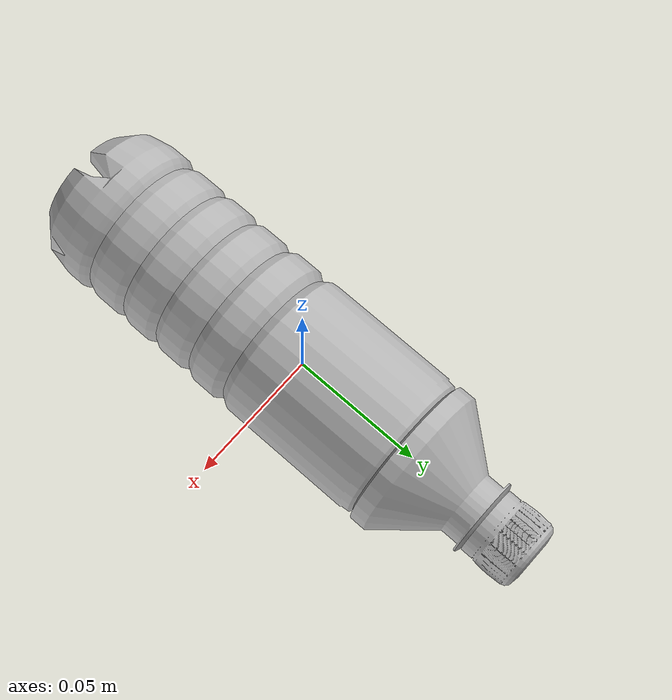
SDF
<?xml version='1.0'?>
<sdf version='1.4'>
  <model name="water_bottle">
    <pose>0 0 0  0 0 0</pose>
    <static>true</static>
    <link name="body">
      <visual name="visual">
        <geometry>
          <mesh>
            <uri>model://PG_water/bottled_water.obj</uri>
            <scale>0.15 0.15 0.15</scale>
          </mesh>
        </geometry>
      </visual>
    </link>
  </model>
</sdf>
